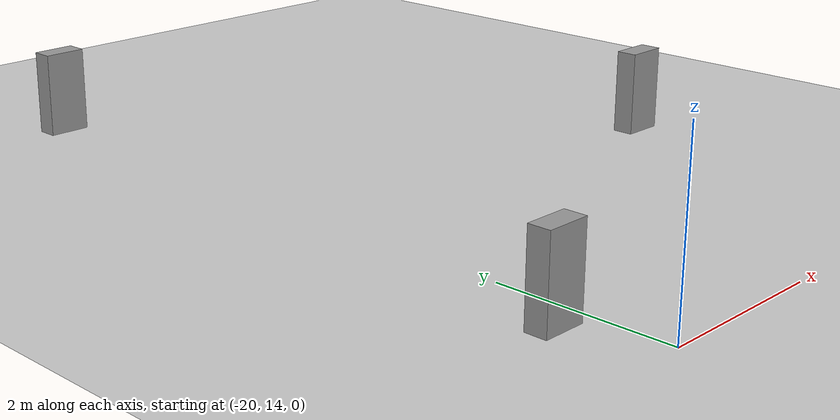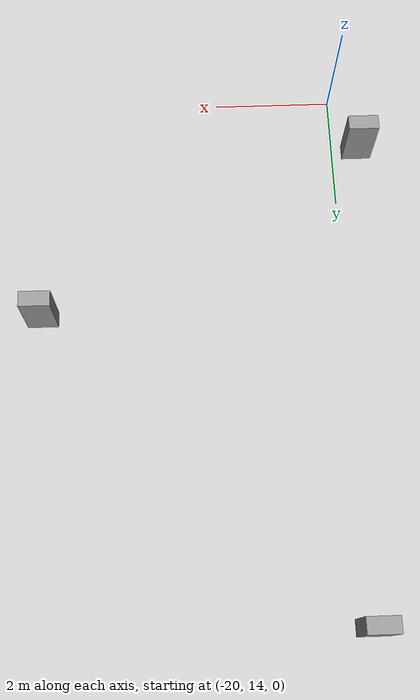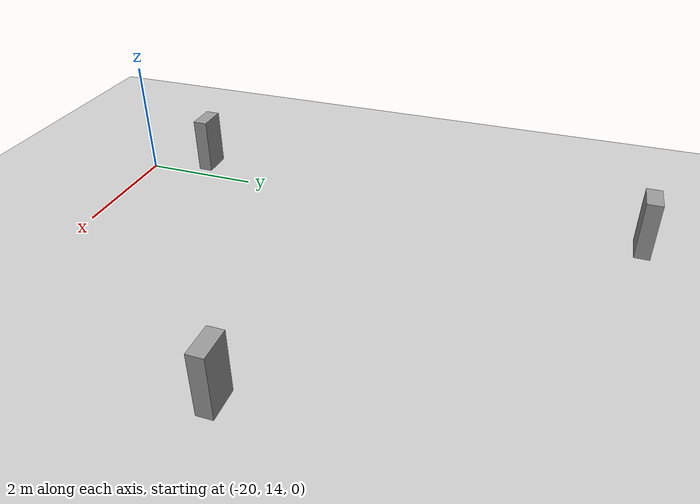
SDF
<sdf version="1.7">
 <world name="default">
  <model name="ground_plane">
   <static>1</static>
   <link name="link">
    <collision name="collision">
     <geometry><plane><normal>0 0 1</normal><size>100 100</size></plane></geometry>
     <surface>
      <contact><collide_bitmask>65535</collide_bitmask></contact>
      <friction><ode><mu>100</mu><mu2>50</mu2></ode></friction>
     </surface>
    </collision>
    <visual name="visual">
     <cast_shadows>0</cast_shadows>
     <geometry><plane><normal>0 0 1</normal><size>100 100</size></plane></geometry>
     <material>
      <script><uri>file://media/materials/scripts/gazebo.material</uri><name>Gazebo/Grey</name></script>
     </material>
    </visual>
   </link>
  </model>
  <model name="box_race_car_clone_8">
   <link name="link">
    <inertial>
     <mass>1</mass>
     <inertia>
      <ixx>0.166667</ixx>
      <ixy>0</ixy>
      <ixz>0</ixz>
      <iyy>0.166667</iyy>
      <iyz>0</iyz>
      <izz>0.166667</izz>
     </inertia>
    </inertial>
    <visual name="visual">
     <geometry><box><size>0.5 0.25 1</size></box></geometry>
     <material>
      <script><name>Gazebo/Grey</name><uri>file://media/materials/scripts/gazebo.material</uri></script>
      <shader type="pixel"><normal_map>__default__</normal_map></shader>
      <ambient>0.3 0.3 0.3 1</ambient>
      <diffuse>0.7 0.7 0.7 1</diffuse>
      <specular>0.01 0.01 0.01 1</specular>
      <emissive>0 0 0 1</emissive>
     </material>
    </visual>
    <collision name="collision">
     <geometry><box><size>0.5 0.25 1</size></box></geometry>
     <surface>
      <friction>
       <ode><mu>1</mu><mu2>1</mu2><fdir1>0 0 0</fdir1><slip1>0</slip1><slip2>0</slip2></ode>
       <torsional>
        <coefficient>1</coefficient>
        <patch_radius>0</patch_radius>
        <surface_radius>0</surface_radius>
        <use_patch_radius>1</use_patch_radius>
        <ode><slip>0</slip></ode>
       </torsional>
      </friction>
      <bounce><restitution_coefficient>0</restitution_coefficient><threshold>1e+06</threshold></bounce>
      <contact>
       <collide_without_contact>0</collide_without_contact>
       <collide_without_contact_bitmask>1</collide_without_contact_bitmask>
       <collide_bitmask>1</collide_bitmask>
       <ode>
        <soft_cfm>0</soft_cfm>
        <soft_erp>0.2</soft_erp>
        <kp>1e+13</kp>
        <kd>1</kd>
        <max_vel>0.01</max_vel>
        <min_depth>0</min_depth>
       </ode>
       <bullet>
        <split_impulse>1</split_impulse>
        <split_impulse_penetration_threshold>-0.01</split_impulse_penetration_threshold>
        <soft_cfm>0</soft_cfm>
        <soft_erp>0.2</soft_erp>
        <kp>1e+13</kp>
        <kd>1</kd>
       </bullet>
      </contact>
     </surface>
    </collision>
   </link>
   <static>0</static>
   <pose>-20 23 0.500001 0 -2e-06 -0.000185</pose>
  </model>
  <model name="box_race_car_clone_9">
   <link name="link">
    <inertial>
     <mass>1</mass>
     <inertia>
      <ixx>0.166667</ixx>
      <ixy>0</ixy>
      <ixz>0</ixz>
      <iyy>0.166667</iyy>
      <iyz>0</iyz>
      <izz>0.166667</izz>
     </inertia>
    </inertial>
    <visual name="visual">
     <geometry><box><size>0.5 0.25 1</size></box></geometry>
     <material>
      <script><name>Gazebo/Grey</name><uri>file://media/materials/scripts/gazebo.material</uri></script>
      <shader type="pixel"><normal_map>__default__</normal_map></shader>
      <ambient>0.3 0.3 0.3 1</ambient>
      <diffuse>0.7 0.7 0.7 1</diffuse>
      <specular>0.01 0.01 0.01 1</specular>
      <emissive>0 0 0 1</emissive>
     </material>
    </visual>
    <collision name="collision">
     <geometry><box><size>0.5 0.25 1</size></box></geometry>
     <surface>
      <friction>
       <ode><mu>1</mu><mu2>1</mu2><fdir1>0 0 0</fdir1><slip1>0</slip1><slip2>0</slip2></ode>
       <torsional>
        <coefficient>1</coefficient>
        <patch_radius>0</patch_radius>
        <surface_radius>0</surface_radius>
        <use_patch_radius>1</use_patch_radius>
        <ode><slip>0</slip></ode>
       </torsional>
      </friction>
      <bounce><restitution_coefficient>0</restitution_coefficient><threshold>1e+06</threshold></bounce>
      <contact>
       <collide_without_contact>0</collide_without_contact>
       <collide_without_contact_bitmask>1</collide_without_contact_bitmask>
       <collide_bitmask>1</collide_bitmask>
       <ode>
        <soft_cfm>0</soft_cfm>
        <soft_erp>0.2</soft_erp>
        <kp>1e+13</kp>
        <kd>1</kd>
        <max_vel>0.01</max_vel>
        <min_depth>0</min_depth>
       </ode>
       <bullet>
        <split_impulse>1</split_impulse>
        <split_impulse_penetration_threshold>-0.01</split_impulse_penetration_threshold>
        <soft_cfm>0</soft_cfm>
        <soft_erp>0.2</soft_erp>
        <kp>1e+13</kp>
        <kd>1</kd>
       </bullet>
      </contact>
     </surface>
    </collision>
   </link>
   <static>0</static>
   <pose>-20.4173 15 0.499999 -3e-06 -4e-06 0.000468</pose>
  </model>
  <model name="box_race_car_clone_32">
   <link name="link">
    <inertial>
     <mass>1</mass>
     <inertia>
      <ixx>0.166667</ixx>
      <ixy>0</ixy>
      <ixz>0</ixz>
      <iyy>0.166667</iyy>
      <iyz>0</iyz>
      <izz>0.166667</izz>
     </inertia>
    </inertial>
    <visual name="visual">
     <geometry><box><size>0.5 0.25 1</size></box></geometry>
     <material>
      <script><name>Gazebo/Grey</name><uri>file://media/materials/scripts/gazebo.material</uri></script>
      <shader type="pixel"><normal_map>__default__</normal_map></shader>
      <ambient>0.3 0.3 0.3 1</ambient>
      <diffuse>0.7 0.7 0.7 1</diffuse>
      <specular>0.01 0.01 0.01 1</specular>
      <emissive>0 0 0 1</emissive>
     </material>
    </visual>
    <collision name="collision">
     <geometry><box><size>0.5 0.25 1</size></box></geometry>
     <surface>
      <friction>
       <ode><mu>1</mu><mu2>1</mu2><fdir1>0 0 0</fdir1><slip1>0</slip1><slip2>0</slip2></ode>
       <torsional>
        <coefficient>1</coefficient>
        <patch_radius>0</patch_radius>
        <surface_radius>0</surface_radius>
        <use_patch_radius>1</use_patch_radius>
        <ode><slip>0</slip></ode>
       </torsional>
      </friction>
      <bounce><restitution_coefficient>0</restitution_coefficient><threshold>1e+06</threshold></bounce>
      <contact>
       <collide_without_contact>0</collide_without_contact>
       <collide_without_contact_bitmask>1</collide_without_contact_bitmask>
       <collide_bitmask>1</collide_bitmask>
       <ode>
        <soft_cfm>0</soft_cfm>
        <soft_erp>0.2</soft_erp>
        <kp>1e+13</kp>
        <kd>1</kd>
        <max_vel>0.01</max_vel>
        <min_depth>0</min_depth>
       </ode>
       <bullet>
        <split_impulse>1</split_impulse>
        <split_impulse_penetration_threshold>-0.01</split_impulse_penetration_threshold>
        <soft_cfm>0</soft_cfm>
        <soft_erp>0.2</soft_erp>
        <kp>1e+13</kp>
        <kd>1</kd>
       </bullet>
      </contact>
     </surface>
    </collision>
   </link>
   <static>0</static>
   <pose>-15 18 0.500001 2e-06 -2e-06 -0.000219</pose>
  </model>
 </world>
</sdf>
